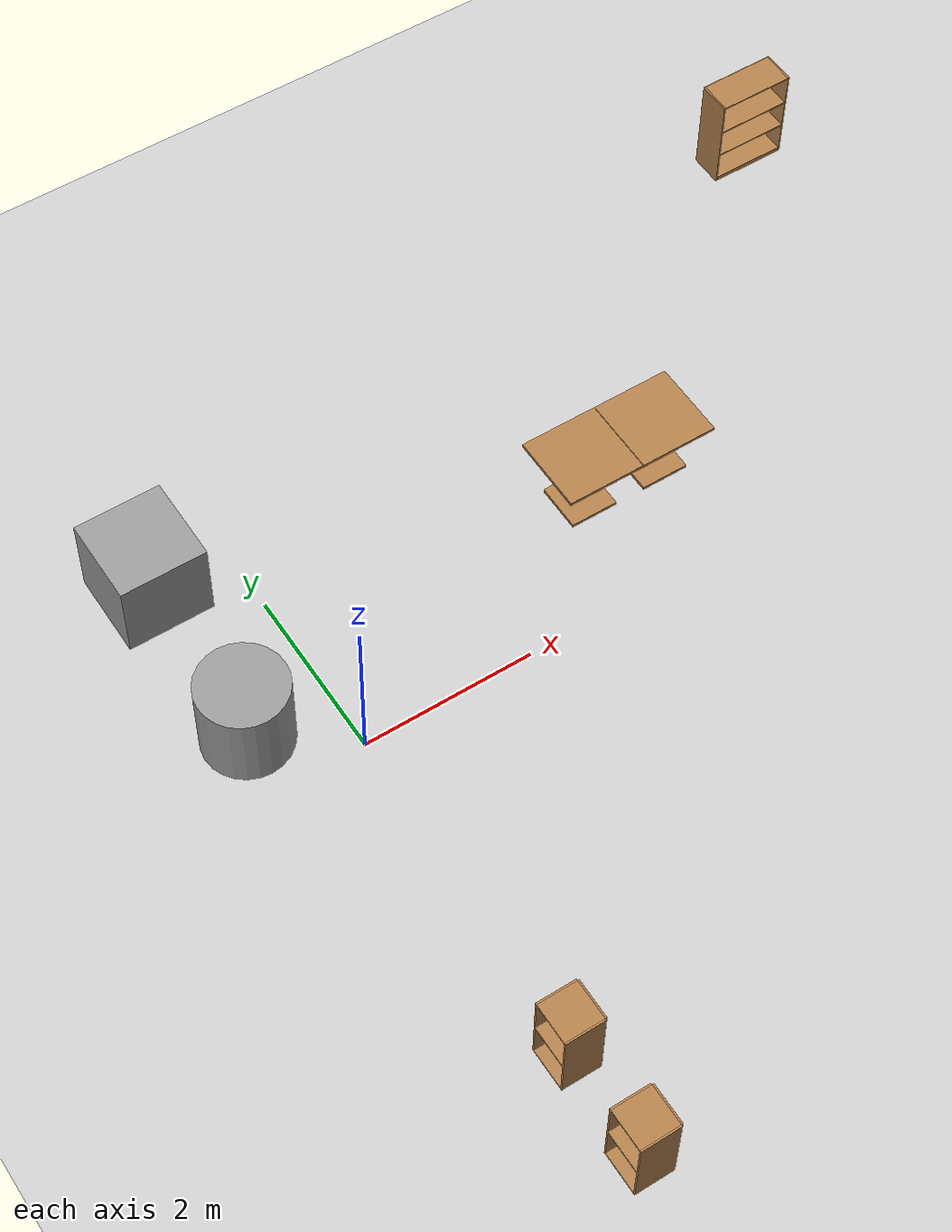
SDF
<sdf version="1.7">
 <world name="default">
  <model name="ground_plane">
   <static>1</static>
   <link name="link">
    <collision name="collision">
     <geometry><plane><normal>0 0 1</normal><size>100 100</size></plane></geometry>
     <surface><friction><ode><mu>100</mu><mu2>50</mu2></ode></friction></surface>
    </collision>
    <visual name="visual">
     <geometry><plane><normal>0 0 1</normal><size>100 100</size></plane></geometry>
     <material>
      <script><uri>file://media/materials/scripts/gazebo.material</uri><name>Gazebo/Grey</name></script>
     </material>
    </visual>
   </link>
  </model>
  <model name="bookshelf">
   <static>1</static>
   <link name="link">
    <inertial><mass>1</mass></inertial>
    <collision name="back">
     <pose>0 0.005 0.6 0 -0 0</pose>
     <geometry><box><size>0.9 0.01 1.2</size></box></geometry>
    </collision>
    <visual name="visual1">
     <pose>0 0.005 0.6 0 -0 0</pose>
     <geometry><box><size>0.9 0.01 1.2</size></box></geometry>
     <material>
      <script><uri>file://media/materials/scripts/gazebo.material</uri><name>Gazebo/Wood</name></script>
     </material>
    </visual>
    <collision name="left_side">
     <pose>0.45 -0.195 0.6 0 -0 0</pose>
     <geometry><box><size>0.02 0.4 1.2</size></box></geometry>
    </collision>
    <visual name="visual2">
     <pose>0.45 -0.195 0.6 0 -0 0</pose>
     <geometry><box><size>0.02 0.4 1.2</size></box></geometry>
     <material>
      <script><uri>file://media/materials/scripts/gazebo.material</uri><name>Gazebo/Wood</name></script>
     </material>
    </visual>
    <collision name="right_side">
     <pose>-0.45 -0.195 0.6 0 -0 0</pose>
     <geometry><box><size>0.02 0.4 1.2</size></box></geometry>
    </collision>
    <visual name="visual3">
     <pose>-0.45 -0.195 0.6 0 -0 0</pose>
     <geometry><box><size>0.02 0.4 1.2</size></box></geometry>
     <material>
      <script><uri>file://media/materials/scripts/gazebo.material</uri><name>Gazebo/Wood</name></script>
     </material>
    </visual>
    <collision name="bottom">
     <pose>0 -0.195 0.03 0 -0 0</pose>
     <geometry><box><size>0.88 0.4 0.06</size></box></geometry>
    </collision>
    <visual name="visual4">
     <pose>0 -0.195 0.03 0 -0 0</pose>
     <geometry><box><size>0.88 0.4 0.06</size></box></geometry>
     <material>
      <script><uri>file://media/materials/scripts/gazebo.material</uri><name>Gazebo/Wood</name></script>
     </material>
    </visual>
    <collision name="top">
     <pose>0 -0.195 1.19 0 -0 0</pose>
     <geometry><box><size>0.88 0.4 0.02</size></box></geometry>
    </collision>
    <visual name="visual5">
     <pose>0 -0.195 1.19 0 -0 0</pose>
     <geometry><box><size>0.88 0.4 0.02</size></box></geometry>
     <material>
      <script><uri>file://media/materials/scripts/gazebo.material</uri><name>Gazebo/Wood</name></script>
     </material>
    </visual>
    <collision name="low_shelf">
     <pose>0 -0.195 0.43 0 -0 0</pose>
     <geometry><box><size>0.88 0.4 0.02</size></box></geometry>
    </collision>
    <visual name="visual6">
     <pose>0 -0.195 0.43 0 -0 0</pose>
     <geometry><box><size>0.88 0.4 0.02</size></box></geometry>
     <material>
      <script><uri>file://media/materials/scripts/gazebo.material</uri><name>Gazebo/Wood</name></script>
     </material>
    </visual>
    <collision name="high_shelf">
     <pose>0 -0.195 0.8 0 -0 0</pose>
     <geometry><box><size>0.88 0.4 0.02</size></box></geometry>
    </collision>
    <visual name="visual7">
     <pose>0 -0.195 0.8 0 -0 0</pose>
     <geometry><box><size>0.88 0.4 0.02</size></box></geometry>
     <material>
      <script><uri>file://media/materials/scripts/gazebo.material</uri><name>Gazebo/Wood</name></script>
     </material>
    </visual>
   </link>
   <pose>7.91236 4.68506 0 0 -0 0</pose>
  </model>
  <model name="cabinet_1">
   <static>1</static>
   <link name="cabinet_bottom_plate">
    <inertial>
     <pose>0 0 -1 0 -0 0</pose>
     <inertia><ixx>2.05</ixx><ixy>0</ixy><ixz>0</ixz><iyy>2.05</iyy><iyz>0</iyz><izz>2.05</izz></inertia>
     <mass>25</mass>
    </inertial>
    <collision name="cabinet_bottom_plate_geom">
     <pose>0 0 0.01 0 -0 0</pose>
     <geometry><box><size>0.45 0.45 0.02</size></box></geometry>
    </collision>
    <visual name="cabinet_bottom_plate_geom_visual">
     <pose>0 0 0.01 0 -0 0</pose>
     <geometry><box><size>0.45 0.45 0.02</size></box></geometry>
     <material>
      <script><uri>file://media/materials/scripts/gazebo.material</uri><name>Gazebo/Wood</name></script>
     </material>
    </visual>
    <collision name="cabinet_bottom_plate_geom_cabinet_back_plate">
     <pose>0.235 0 0.51 0 -0 0</pose>
     <geometry><box><size>0.02 0.45 1.02</size></box></geometry>
    </collision>
    <visual name="cabinet_bottom_plate_geom_cabinet_back_plate_visual">
     <pose>0.235 0 0.51 0 -0 0</pose>
     <geometry><box><size>0.02 0.45 1.02</size></box></geometry>
     <material>
      <script><uri>file://media/materials/scripts/gazebo.material</uri><name>Gazebo/Wood</name></script>
     </material>
    </visual>
    <collision name="cabinet_bottom_plate_geom_cabinet_left_plate">
     <pose>0 0.235 0.51 0 -0 0</pose>
     <geometry><box><size>0.45 0.02 1.02</size></box></geometry>
    </collision>
    <visual name="cabinet_bottom_plate_geom_cabinet_left_plate_visual">
     <pose>0 0.235 0.51 0 -0 0</pose>
     <geometry><box><size>0.45 0.02 1.02</size></box></geometry>
     <material>
      <script><uri>file://media/materials/scripts/gazebo.material</uri><name>Gazebo/Wood</name></script>
     </material>
    </visual>
    <collision name="cabinet_bottom_plate_geom_cabinet_middle_plate">
     <pose>0 0 0.51 0 -0 0</pose>
     <geometry><box><size>0.45 0.45 0.02</size></box></geometry>
    </collision>
    <visual name="cabinet_bottom_plate_geom_cabinet_middle_plate_visual">
     <pose>0 0 0.51 0 -0 0</pose>
     <geometry><box><size>0.45 0.45 0.02</size></box></geometry>
     <material>
      <script><uri>file://media/materials/scripts/gazebo.material</uri><name>Gazebo/Wood</name></script>
     </material>
    </visual>
    <collision name="cabinet_bottom_plate_geom_cabinet_right_plate">
     <pose>0 -0.235 0.51 0 -0 0</pose>
     <geometry><box><size>0.45 0.02 1.02</size></box></geometry>
    </collision>
    <visual name="cabinet_bottom_plate_geom_cabinet_right_plate_visual">
     <pose>0 -0.235 0.51 0 -0 0</pose>
     <geometry><box><size>0.45 0.02 1.02</size></box></geometry>
     <material>
      <script><uri>file://media/materials/scripts/gazebo.material</uri><name>Gazebo/Wood</name></script>
     </material>
    </visual>
    <collision name="cabinet_bottom_plate_geom_cabinet_top_plate">
     <pose>0 0 1.01 0 -0 0</pose>
     <geometry><box><size>0.45 0.45 0.02</size></box></geometry>
    </collision>
    <visual name="cabinet_bottom_plate_geom_cabinet_top_plate_visual">
     <pose>0 0 1.01 0 -0 0</pose>
     <geometry><box><size>0.45 0.45 0.02</size></box></geometry>
     <material>
      <script><uri>file://media/materials/scripts/gazebo.material</uri><name>Gazebo/Wood</name></script>
     </material>
    </visual>
   </link>
   <pose>-0.201253 -3.92041 0 0 -0 0</pose>
  </model>
  <model name="cabinet_2">
   <static>1</static>
   <link name="cabinet_bottom_plate">
    <inertial>
     <pose>0 0 -1 0 -0 0</pose>
     <inertia><ixx>2.05</ixx><ixy>0</ixy><ixz>0</ixz><iyy>2.05</iyy><iyz>0</iyz><izz>2.05</izz></inertia>
     <mass>25</mass>
    </inertial>
    <collision name="cabinet_bottom_plate_geom">
     <pose>0 0 0.01 0 -0 0</pose>
     <geometry><box><size>0.45 0.45 0.02</size></box></geometry>
    </collision>
    <visual name="cabinet_bottom_plate_geom_visual">
     <pose>0 0 0.01 0 -0 0</pose>
     <geometry><box><size>0.45 0.45 0.02</size></box></geometry>
     <material>
      <script><uri>file://media/materials/scripts/gazebo.material</uri><name>Gazebo/Wood</name></script>
     </material>
    </visual>
    <collision name="cabinet_bottom_plate_geom_cabinet_back_plate">
     <pose>0.235 0 0.51 0 -0 0</pose>
     <geometry><box><size>0.02 0.45 1.02</size></box></geometry>
    </collision>
    <visual name="cabinet_bottom_plate_geom_cabinet_back_plate_visual">
     <pose>0.235 0 0.51 0 -0 0</pose>
     <geometry><box><size>0.02 0.45 1.02</size></box></geometry>
     <material>
      <script><uri>file://media/materials/scripts/gazebo.material</uri><name>Gazebo/Wood</name></script>
     </material>
    </visual>
    <collision name="cabinet_bottom_plate_geom_cabinet_left_plate">
     <pose>0 0.235 0.51 0 -0 0</pose>
     <geometry><box><size>0.45 0.02 1.02</size></box></geometry>
    </collision>
    <visual name="cabinet_bottom_plate_geom_cabinet_left_plate_visual">
     <pose>0 0.235 0.51 0 -0 0</pose>
     <geometry><box><size>0.45 0.02 1.02</size></box></geometry>
     <material>
      <script><uri>file://media/materials/scripts/gazebo.material</uri><name>Gazebo/Wood</name></script>
     </material>
    </visual>
    <collision name="cabinet_bottom_plate_geom_cabinet_middle_plate">
     <pose>0 0 0.51 0 -0 0</pose>
     <geometry><box><size>0.45 0.45 0.02</size></box></geometry>
    </collision>
    <visual name="cabinet_bottom_plate_geom_cabinet_middle_plate_visual">
     <pose>0 0 0.51 0 -0 0</pose>
     <geometry><box><size>0.45 0.45 0.02</size></box></geometry>
     <material>
      <script><uri>file://media/materials/scripts/gazebo.material</uri><name>Gazebo/Wood</name></script>
     </material>
    </visual>
    <collision name="cabinet_bottom_plate_geom_cabinet_right_plate">
     <pose>0 -0.235 0.51 0 -0 0</pose>
     <geometry><box><size>0.45 0.02 1.02</size></box></geometry>
    </collision>
    <visual name="cabinet_bottom_plate_geom_cabinet_right_plate_visual">
     <pose>0 -0.235 0.51 0 -0 0</pose>
     <geometry><box><size>0.45 0.02 1.02</size></box></geometry>
     <material>
      <script><uri>file://media/materials/scripts/gazebo.material</uri><name>Gazebo/Wood</name></script>
     </material>
    </visual>
    <collision name="cabinet_bottom_plate_geom_cabinet_top_plate">
     <pose>0 0 1.01 0 -0 0</pose>
     <geometry><box><size>0.45 0.45 0.02</size></box></geometry>
    </collision>
    <visual name="cabinet_bottom_plate_geom_cabinet_top_plate_visual">
     <pose>0 0 1.01 0 -0 0</pose>
     <geometry><box><size>0.45 0.45 0.02</size></box></geometry>
     <material>
      <script><uri>file://media/materials/scripts/gazebo.material</uri><name>Gazebo/Wood</name></script>
     </material>
    </visual>
   </link>
   <pose>-0.211824 -5.1227 0 0 -0 0</pose>
  </model>
  <model name="cafe_table_0">
   <static>1</static>
   <link name="link">
    <collision name="surface">
     <pose>0 0 0.755 0 -0 0</pose>
     <geometry><box><size>0.913 0.913 0.04</size></box></geometry>
    </collision>
    <collision name="column">
     <pose>0 0 0.37 0 -0 0</pose>
     <geometry><box><size>0.042 0.042 0.74</size></box></geometry>
    </collision>
    <collision name="base">
     <pose>0 0 0.02 0 -0 0</pose>
     <geometry><box><size>0.56 0.56 0.04</size></box></geometry>
    </collision>
    <visual name="visual">
     <geometry><box><size>0.913 0.913 0.04</size></box></geometry>
     <pose>0 0 0.755 0 -0 0</pose>
     <material>
      <script><uri>file://media/materials/scripts/gazebo.material</uri><name>Gazebo/Wood</name></script>
     </material>
    </visual>
    <visual name="visual_column">
     <geometry><box><size>0.042 0.042 0.74</size></box></geometry>
     <pose>0 0 0.37 0 -0 0</pose>
     <material>
      <script><uri>file://media/materials/scripts/gazebo.material</uri><name>Gazebo/Wood</name></script>
     </material>
    </visual>
    <visual name="visual_base">
     <geometry><box><size>0.56 0.56 0.04</size></box></geometry>
     <pose>0 0 0.02 0 -0 0</pose>
     <material>
      <script><uri>file://media/materials/scripts/gazebo.material</uri><name>Gazebo/Wood</name></script>
     </material>
    </visual>
   </link>
   <pose>3.54156 1.36869 0 0 -0 0</pose>
  </model>
  <model name="cafe_table_1">
   <static>1</static>
   <link name="link">
    <collision name="surface">
     <pose>0 0 0.755 0 -0 0</pose>
     <geometry><box><size>0.913 0.913 0.04</size></box></geometry>
    </collision>
    <collision name="column">
     <pose>0 0 0.37 0 -0 0</pose>
     <geometry><box><size>0.042 0.042 0.74</size></box></geometry>
    </collision>
    <collision name="base">
     <pose>0 0 0.02 0 -0 0</pose>
     <geometry><box><size>0.56 0.56 0.04</size></box></geometry>
    </collision>
    <visual name="visual">
     <geometry><box><size>0.913 0.913 0.04</size></box></geometry>
     <pose>0 0 0.755 0 -0 0</pose>
     <material>
      <script><uri>file://media/materials/scripts/gazebo.material</uri><name>Gazebo/Wood</name></script>
     </material>
    </visual>
    <visual name="visual_column">
     <geometry><box><size>0.042 0.042 0.74</size></box></geometry>
     <pose>0 0 0.37 0 -0 0</pose>
     <material>
      <script><uri>file://media/materials/scripts/gazebo.material</uri><name>Gazebo/Wood</name></script>
     </material>
    </visual>
    <visual name="visual_base">
     <geometry><box><size>0.56 0.56 0.04</size></box></geometry>
     <pose>0 0 0.02 0 -0 0</pose>
     <material>
      <script><uri>file://media/materials/scripts/gazebo.material</uri><name>Gazebo/Wood</name></script>
     </material>
    </visual>
   </link>
   <pose>4.46016 1.36814 0 0 -0 0</pose>
  </model>
  <model name="unit_cylinder">
   <static>1</static>
   <pose>-0.961048 0.717233 0.499993 -3e-06 -4e-06 -0</pose>
   <link name="link">
    <inertial>
     <mass>1</mass>
     <inertia><ixx>0.145833</ixx><ixy>0</ixy><ixz>0</ixz><iyy>0.145833</iyy><iyz>0</iyz><izz>0.125</izz></inertia>
    </inertial>
    <collision name="collision">
     <geometry><cylinder><radius>0.5</radius><length>1</length></cylinder></geometry>
    </collision>
    <visual name="visual">
     <geometry><cylinder><radius>0.5</radius><length>1</length></cylinder></geometry>
     <material>
      <script><name>Gazebo/Grey</name><uri>file://media/materials/scripts/gazebo.material</uri></script>
     </material>
    </visual>
   </link>
  </model>
  <model name="unit_box">
   <static>1</static>
   <pose>-0.958121 2.77839 0.5 0 -0 0</pose>
   <link name="link">
    <inertial>
     <mass>1</mass>
     <inertia>
      <ixx>0.166667</ixx>
      <ixy>0</ixy>
      <ixz>0</ixz>
      <iyy>0.166667</iyy>
      <iyz>0</iyz>
      <izz>0.166667</izz>
     </inertia>
    </inertial>
    <collision name="collision"><geometry><box><size>1 1 1</size></box></geometry></collision>
    <visual name="visual">
     <geometry><box><size>1 1 1</size></box></geometry>
     <material>
      <script><name>Gazebo/Grey</name><uri>file://media/materials/scripts/gazebo.material</uri></script>
     </material>
    </visual>
   </link>
  </model>
 </world>
</sdf>
